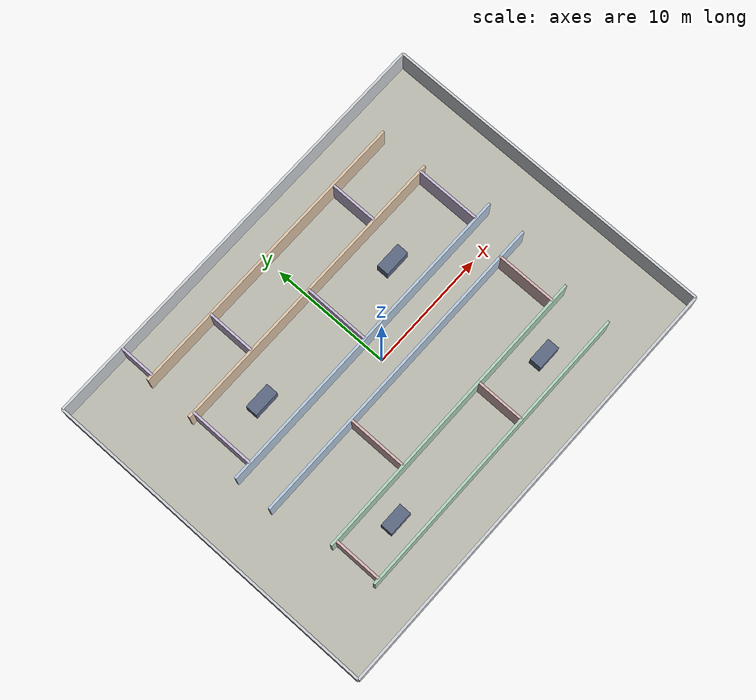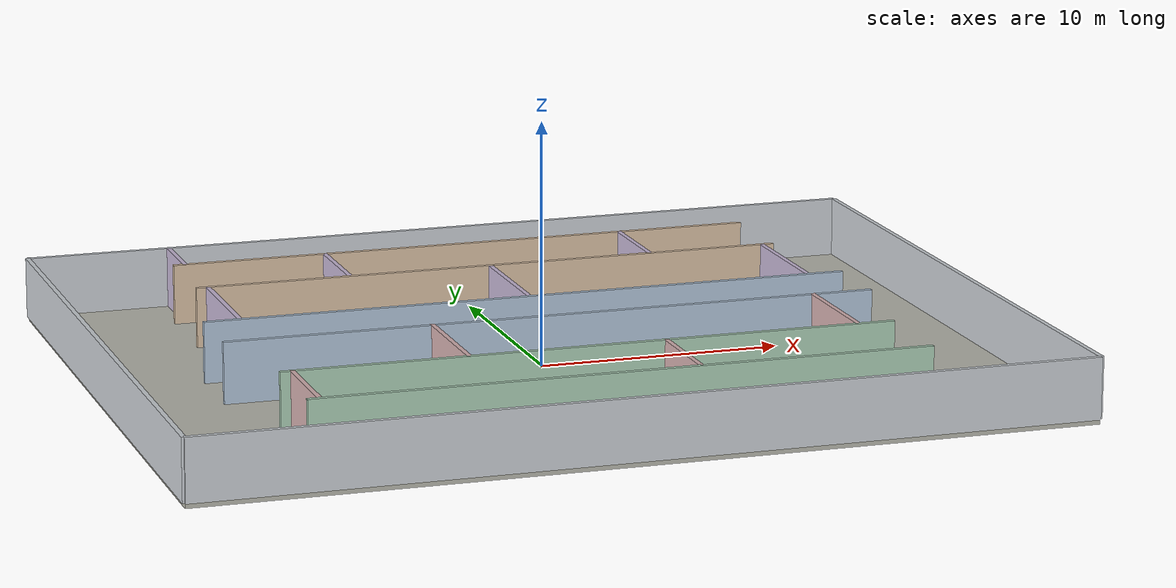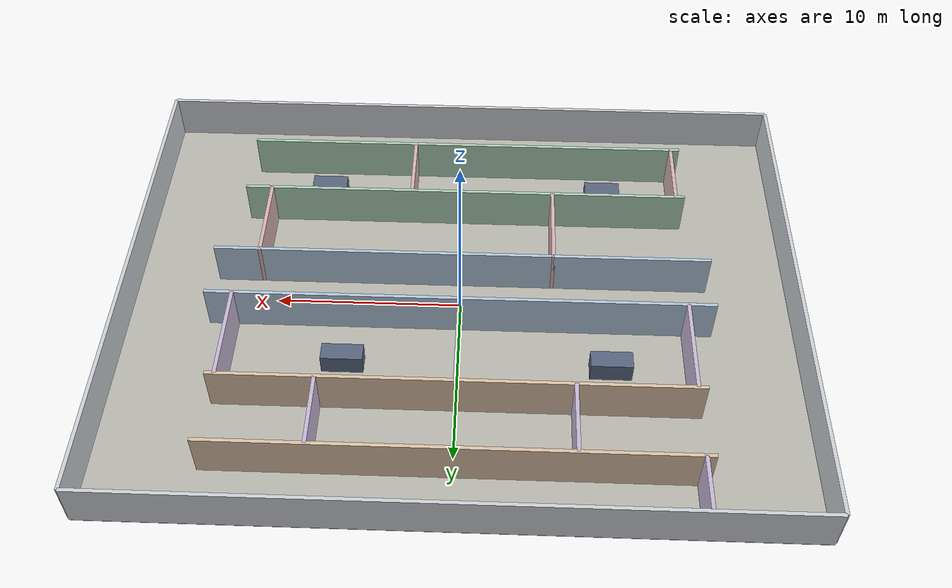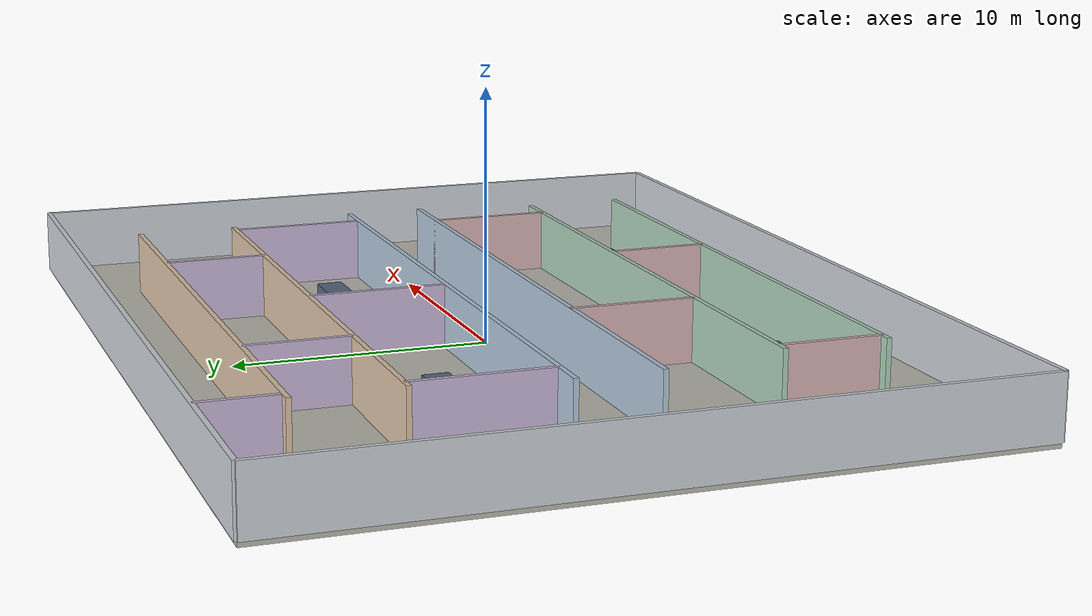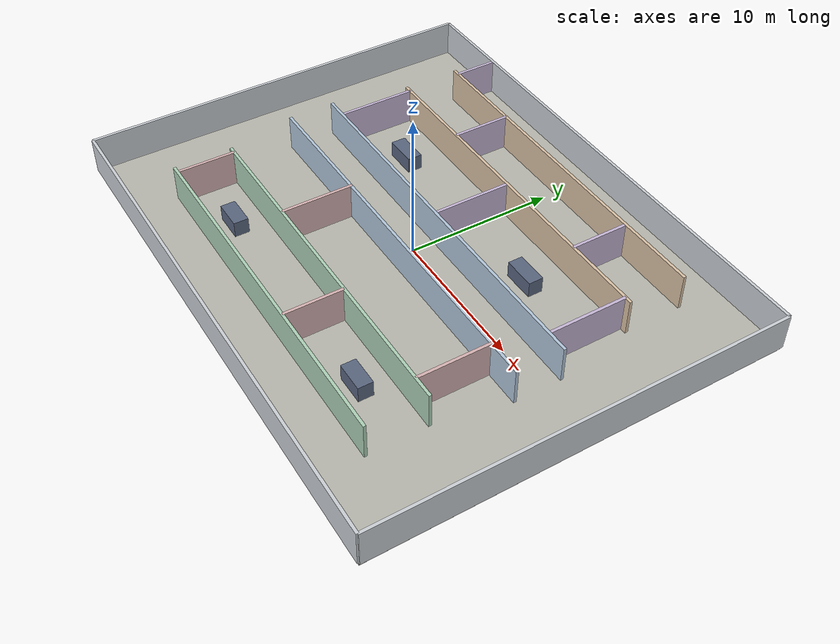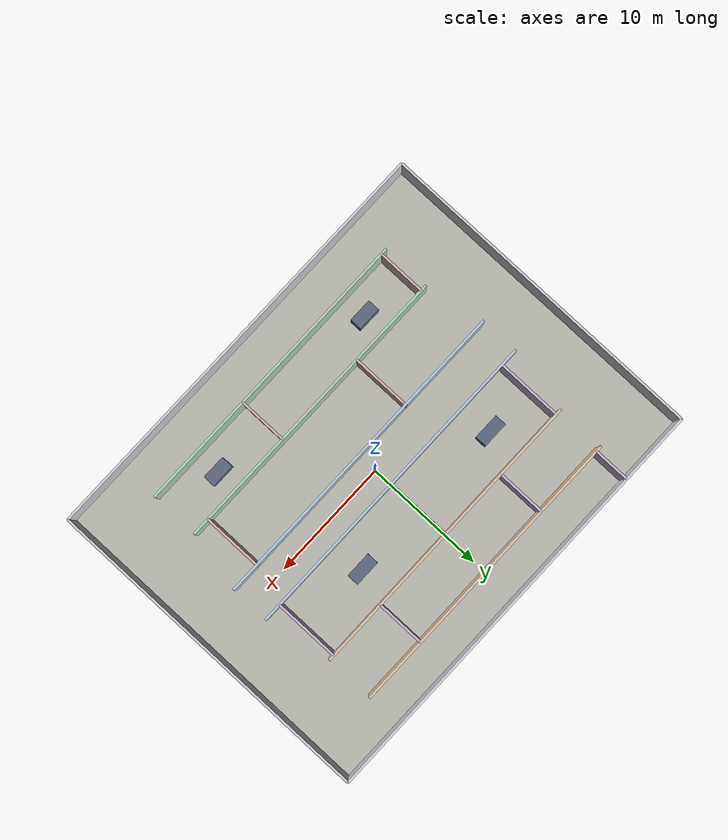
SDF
<?xml version="1.0"?>
<sdf version="1.6">
  <world name="corridor_museum">
    <include><uri>model://sun</uri></include>
    <physics name="default_physics" type="ode">
      <!-- Make the intended one-second simulation/one-second wall-time ratio
           explicit.  Sensor and odometry rates divide evenly into this step. -->
      <real_time_factor>1.0</real_time_factor>
      <real_time_update_rate>1000</real_time_update_rate>
      <max_step_size>0.001</max_step_size>
    </physics>
    <scene>
      <ambient>0.55 0.55 0.55 1</ambient>
      <background>0.75 0.80 0.88 1</background>
      <shadows>true</shadows>
    </scene>

    <model name="museum_building">
      <static>true</static>
      <link name="structure">
        <!-- 36 x 28 metre floor. -->
        <collision name="floor_collision"><pose>0 0 -0.10 0 0 0</pose><geometry><box><size>36 28 0.2</size></box></geometry></collision>
        <visual name="floor_visual"><pose>0 0 -0.10 0 0 0</pose><geometry><box><size>36 28 0.2</size></box></geometry><material><ambient>0.72 0.72 0.68 1</ambient><diffuse>0.72 0.72 0.68 1</diffuse></material></visual>

        <!-- Outer shell. Wall height 2.5 m, thickness 0.2 m. -->
        <collision name="north_c"><pose>0 14 1.25 0 0 0</pose><geometry><box><size>36 0.2 2.5</size></box></geometry></collision>
        <visual name="north_v"><pose>0 14 1.25 0 0 0</pose><geometry><box><size>36 0.2 2.5</size></box></geometry><material><ambient>0.80 0.82 0.84 1</ambient><diffuse>0.80 0.82 0.84 1</diffuse></material></visual>
        <collision name="south_c"><pose>0 -14 1.25 0 0 0</pose><geometry><box><size>36 0.2 2.5</size></box></geometry></collision>
        <visual name="south_v"><pose>0 -14 1.25 0 0 0</pose><geometry><box><size>36 0.2 2.5</size></box></geometry><material><ambient>0.80 0.82 0.84 1</ambient><diffuse>0.80 0.82 0.84 1</diffuse></material></visual>
        <collision name="east_c"><pose>18 0 1.25 0 0 0</pose><geometry><box><size>0.2 28 2.5</size></box></geometry></collision>
        <visual name="east_v"><pose>18 0 1.25 0 0 0</pose><geometry><box><size>0.2 28 2.5</size></box></geometry><material><ambient>0.80 0.82 0.84 1</ambient><diffuse>0.80 0.82 0.84 1</diffuse></material></visual>
        <collision name="west_c"><pose>-18 0 1.25 0 0 0</pose><geometry><box><size>0.2 28 2.5</size></box></geometry></collision>
        <visual name="west_v"><pose>-18 0 1.25 0 0 0</pose><geometry><box><size>0.2 28 2.5</size></box></geometry><material><ambient>0.80 0.82 0.84 1</ambient><diffuse>0.80 0.82 0.84 1</diffuse></material></visual>

        <!-- Long central east-west corridor, 3 m clear width. -->
        <collision name="central_n_c"><pose>0 1.6 1.25 0 0 0</pose><geometry><box><size>27 0.2 2.5</size></box></geometry></collision>
        <visual name="central_n_v"><pose>0 1.6 1.25 0 0 0</pose><geometry><box><size>27 0.2 2.5</size></box></geometry><material><ambient>0.70 0.78 0.86 1</ambient><diffuse>0.70 0.78 0.86 1</diffuse></material></visual>
        <collision name="central_s_c"><pose>0 -1.6 1.25 0 0 0</pose><geometry><box><size>27 0.2 2.5</size></box></geometry></collision>
        <visual name="central_s_v"><pose>0 -1.6 1.25 0 0 0</pose><geometry><box><size>27 0.2 2.5</size></box></geometry><material><ambient>0.70 0.78 0.86 1</ambient><diffuse>0.70 0.78 0.86 1</diffuse></material></visual>

        <!-- North wing: two parallel corridors connected at both ends. -->
        <collision name="north_mid_c"><pose>0 7.0 1.25 0 0 0</pose><geometry><box><size>25 0.2 2.5</size></box></geometry></collision>
        <visual name="north_mid_v"><pose>0 7.0 1.25 0 0 0</pose><geometry><box><size>25 0.2 2.5</size></box></geometry><material><ambient>0.86 0.76 0.65 1</ambient><diffuse>0.86 0.76 0.65 1</diffuse></material></visual>
        <collision name="north_upper_c"><pose>0 11.0 1.25 0 0 0</pose><geometry><box><size>25 0.2 2.5</size></box></geometry></collision>
        <visual name="north_upper_v"><pose>0 11.0 1.25 0 0 0</pose><geometry><box><size>25 0.2 2.5</size></box></geometry><material><ambient>0.86 0.76 0.65 1</ambient><diffuse>0.86 0.76 0.65 1</diffuse></material></visual>

        <!-- South wing: gallery corridors with offset intersections. -->
        <collision name="south_mid_c"><pose>0 -6.5 1.25 0 0 0</pose><geometry><box><size>25 0.2 2.5</size></box></geometry></collision>
        <visual name="south_mid_v"><pose>0 -6.5 1.25 0 0 0</pose><geometry><box><size>25 0.2 2.5</size></box></geometry><material><ambient>0.68 0.82 0.72 1</ambient><diffuse>0.68 0.82 0.72 1</diffuse></material></visual>
        <collision name="south_lower_c"><pose>0 -10.5 1.25 0 0 0</pose><geometry><box><size>25 0.2 2.5</size></box></geometry></collision>
        <visual name="south_lower_v"><pose>0 -10.5 1.25 0 0 0</pose><geometry><box><size>25 0.2 2.5</size></box></geometry><material><ambient>0.68 0.82 0.72 1</ambient><diffuse>0.68 0.82 0.72 1</diffuse></material></visual>

        <!-- Vertical walls create cross-corridors; gaps are wide doorways. -->
        <collision name="v1a_c"><pose>-12 4.3 1.25 0 0 0</pose><geometry><box><size>0.2 5.4 2.5</size></box></geometry></collision>
        <visual name="v1a_v"><pose>-12 4.3 1.25 0 0 0</pose><geometry><box><size>0.2 5.4 2.5</size></box></geometry><material><ambient>0.78 0.72 0.84 1</ambient><diffuse>0.78 0.72 0.84 1</diffuse></material></visual>
        <collision name="v1b_c"><pose>-12 12.5 1.25 0 0 0</pose><geometry><box><size>0.2 3.0 2.5</size></box></geometry></collision>
        <visual name="v1b_v"><pose>-12 12.5 1.25 0 0 0</pose><geometry><box><size>0.2 3.0 2.5</size></box></geometry><material><ambient>0.78 0.72 0.84 1</ambient><diffuse>0.78 0.72 0.84 1</diffuse></material></visual>
        <collision name="v2_c"><pose>-6 9.0 1.25 0 0 0</pose><geometry><box><size>0.2 4.0 2.5</size></box></geometry></collision>
        <visual name="v2_v"><pose>-6 9.0 1.25 0 0 0</pose><geometry><box><size>0.2 4.0 2.5</size></box></geometry><material><ambient>0.78 0.72 0.84 1</ambient><diffuse>0.78 0.72 0.84 1</diffuse></material></visual>
        <collision name="v3_c"><pose>0 4.3 1.25 0 0 0</pose><geometry><box><size>0.2 5.4 2.5</size></box></geometry></collision>
        <visual name="v3_v"><pose>0 4.3 1.25 0 0 0</pose><geometry><box><size>0.2 5.4 2.5</size></box></geometry><material><ambient>0.78 0.72 0.84 1</ambient><diffuse>0.78 0.72 0.84 1</diffuse></material></visual>
        <collision name="v4_c"><pose>7 9.0 1.25 0 0 0</pose><geometry><box><size>0.2 4.0 2.5</size></box></geometry></collision>
        <visual name="v4_v"><pose>7 9.0 1.25 0 0 0</pose><geometry><box><size>0.2 4.0 2.5</size></box></geometry><material><ambient>0.78 0.72 0.84 1</ambient><diffuse>0.78 0.72 0.84 1</diffuse></material></visual>
        <collision name="v5_c"><pose>12 4.3 1.25 0 0 0</pose><geometry><box><size>0.2 5.4 2.5</size></box></geometry></collision>
        <visual name="v5_v"><pose>12 4.3 1.25 0 0 0</pose><geometry><box><size>0.2 5.4 2.5</size></box></geometry><material><ambient>0.78 0.72 0.84 1</ambient><diffuse>0.78 0.72 0.84 1</diffuse></material></visual>

        <collision name="sv1_c"><pose>-12 -8.5 1.25 0 0 0</pose><geometry><box><size>0.2 4.0 2.5</size></box></geometry></collision>
        <visual name="sv1_v"><pose>-12 -8.5 1.25 0 0 0</pose><geometry><box><size>0.2 4.0 2.5</size></box></geometry><material><ambient>0.84 0.70 0.70 1</ambient><diffuse>0.84 0.70 0.70 1</diffuse></material></visual>
        <collision name="sv2_c"><pose>-5 -4.0 1.25 0 0 0</pose><geometry><box><size>0.2 5.0 2.5</size></box></geometry></collision>
        <visual name="sv2_v"><pose>-5 -4.0 1.25 0 0 0</pose><geometry><box><size>0.2 5.0 2.5</size></box></geometry><material><ambient>0.84 0.70 0.70 1</ambient><diffuse>0.84 0.70 0.70 1</diffuse></material></visual>
        <collision name="sv3_c"><pose>3 -8.5 1.25 0 0 0</pose><geometry><box><size>0.2 4.0 2.5</size></box></geometry></collision>
        <visual name="sv3_v"><pose>3 -8.5 1.25 0 0 0</pose><geometry><box><size>0.2 4.0 2.5</size></box></geometry><material><ambient>0.84 0.70 0.70 1</ambient><diffuse>0.84 0.70 0.70 1</diffuse></material></visual>
        <collision name="sv4_c"><pose>11 -4.0 1.25 0 0 0</pose><geometry><box><size>0.2 5.0 2.5</size></box></geometry></collision>
        <visual name="sv4_v"><pose>11 -4.0 1.25 0 0 0</pose><geometry><box><size>0.2 5.0 2.5</size></box></geometry><material><ambient>0.84 0.70 0.70 1</ambient><diffuse>0.84 0.70 0.70 1</diffuse></material></visual>

        <!-- Exhibit islands provide realistic lidar obstacles and route choices. -->
        <collision name="display1_c"><pose>-8 4.3 0.55 0 0 0</pose><geometry><box><size>2.2 1.0 1.1</size></box></geometry></collision>
        <visual name="display1_v"><pose>-8 4.3 0.55 0 0 0</pose><geometry><box><size>2.2 1.0 1.1</size></box></geometry><material><ambient>0.35 0.40 0.50 1</ambient><diffuse>0.35 0.40 0.50 1</diffuse></material></visual>
        <collision name="display2_c"><pose>6 4.3 0.55 0 0 0</pose><geometry><box><size>2.2 1.0 1.1</size></box></geometry></collision>
        <visual name="display2_v"><pose>6 4.3 0.55 0 0 0</pose><geometry><box><size>2.2 1.0 1.1</size></box></geometry><material><ambient>0.35 0.40 0.50 1</ambient><diffuse>0.35 0.40 0.50 1</diffuse></material></visual>
        <collision name="display3_c"><pose>-8 -8.5 0.55 0 0 0</pose><geometry><box><size>2.0 1.0 1.1</size></box></geometry></collision>
        <visual name="display3_v"><pose>-8 -8.5 0.55 0 0 0</pose><geometry><box><size>2.0 1.0 1.1</size></box></geometry><material><ambient>0.35 0.40 0.50 1</ambient><diffuse>0.35 0.40 0.50 1</diffuse></material></visual>
        <collision name="display4_c"><pose>8 -8.5 0.55 0 0 0</pose><geometry><box><size>2.0 1.0 1.1</size></box></geometry></collision>
        <visual name="display4_v"><pose>8 -8.5 0.55 0 0 0</pose><geometry><box><size>2.0 1.0 1.1</size></box></geometry><material><ambient>0.35 0.40 0.50 1</ambient><diffuse>0.35 0.40 0.50 1</diffuse></material></visual>
      </link>
    </model>

    <gui fullscreen="0">
      <camera name="overview"><pose>0 -31 31 0 0.72 1.57</pose></camera>
    </gui>
  </world>
</sdf>
